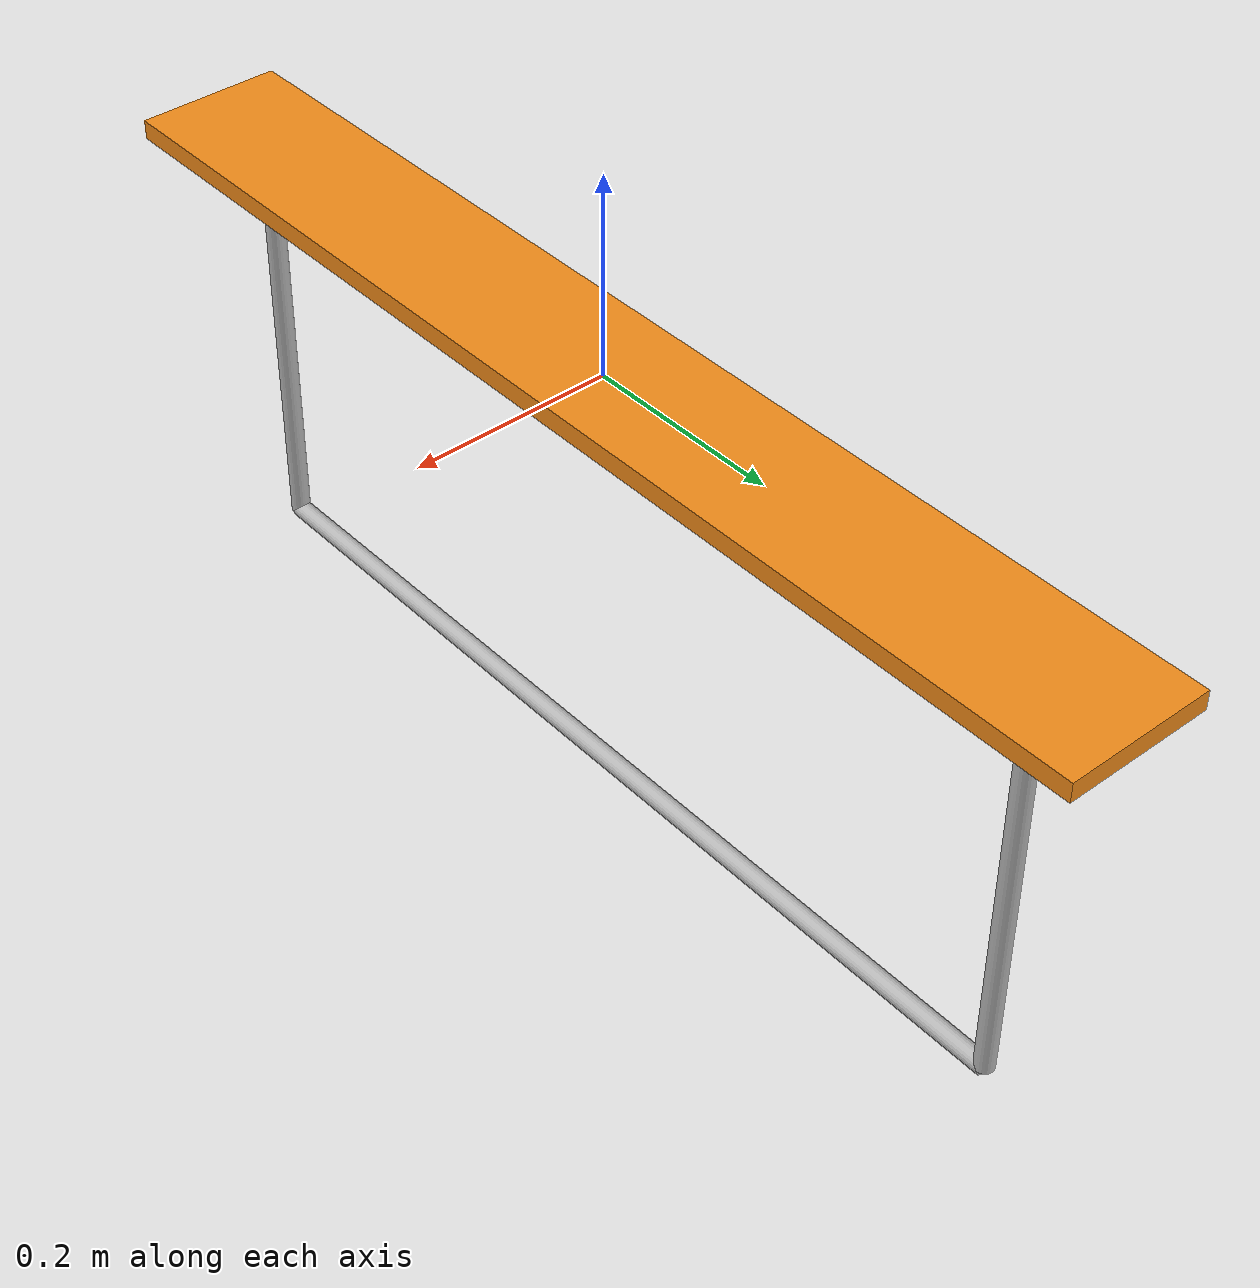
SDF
<?xml version='1.0'?>
<sdf version='1.5'>

  <model name='path_marker'>
    <pose>0 0 0 0 0 0</pose>
    <self_collide> 0 </self_collide>
    <static> 1</static>

    <link name='top'>
      <pose>0 0 0 0 0 0</pose>
      <visual name='top_vis'>
        <geometry>
            <box><size>0.15 1.2 0.02</size></box>
        </geometry>
        <material>
          <script>
            <uri>file://media/materials/scripts/gazebo.material</uri>
            <name>Gazebo/Orange</name>
          </script>
          <diffuse>0.6 0.3088 0.0468 1</diffuse>
        </material>
      </visual>
      <collision name='red_collide'>
        <pose>0 0 0 0 0 0</pose>
        <geometry>
            <box><size>0.15 1.2 0.02</size></box>
        </geometry>
      </collision>
    </link>

    <link name='legs'>
      <visual name='leg1'>
        <pose>0 0.5 -0.225 0 0 0</pose>
        <geometry>
          <cylinder>
            <radius>0.01</radius>
            <length>0.45</length>
          </cylinder>
        </geometry>
      </visual>
      <visual name='leg2'>
        <pose>0 -0.5 -0.225 0 0 0</pose>
        <geometry>
          <cylinder>
            <radius>0.01</radius>
            <length>0.45</length>
          </cylinder>
        </geometry>
      </visual>
      <visual name='leg_link'>
        <pose>0 0 -0.45 1.5707 0 0</pose>
        <geometry>
          <cylinder>
            <radius>0.01</radius>
            <length>1</length>
          </cylinder>
        </geometry>
      </visual>
      <collision name='leg_col'>
        <pose>0 0 -0.225 0 0 0</pose>
          <geometry>
            <box><size>0.15 1.2 0.45</size></box>
          </geometry>
      </collision>
    </link>

  </model>
</sdf>
